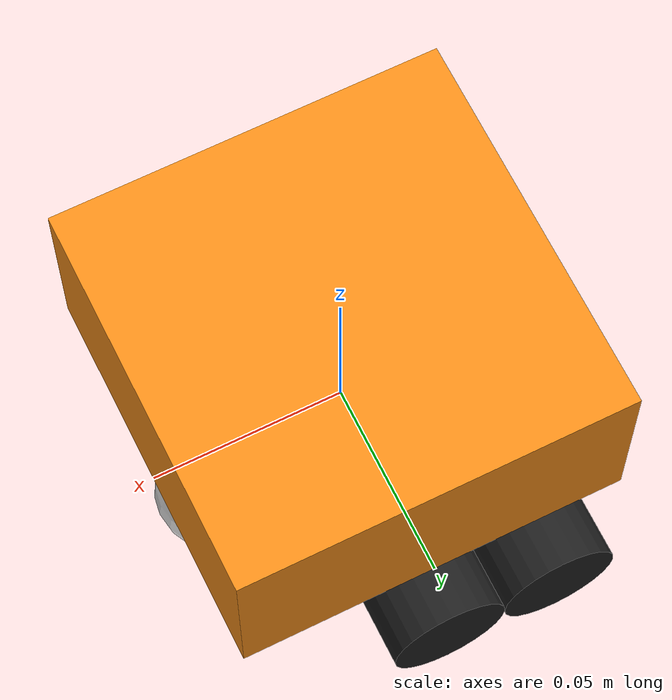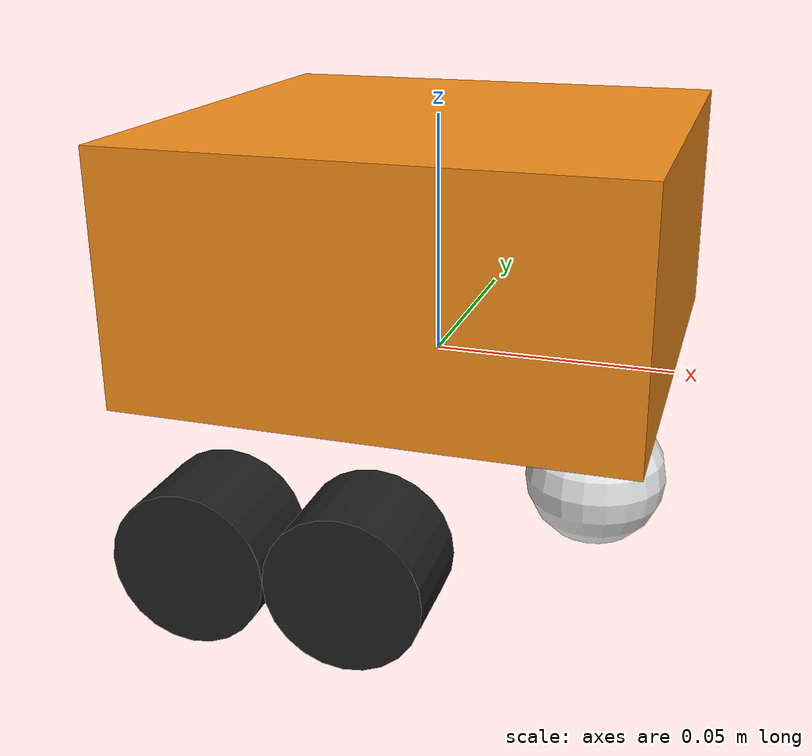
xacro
<?xml version="1.0"?>
<!-- Basic differential drive mobile base -->
<robot xmlns:xacro="http://www.ros.org/wiki/xacro" name="rover">
  <xacro:arg name="prefix" default="" />
  <xacro:arg name="use_mock_hardware" default="false" />

  <xacro:include filename="$(find mars_rover)/description/urdf/rover_description.urdf.xacro" />

  <xacro:include filename="$(find mars_rover)/description/urdf/materials.xacro" />
  <!-- Import rover ros2_control description -->
  <xacro:include filename="$(find mars_rover)/description/ros2_control/rover.ros2_control.xacro" />

  <xacro:rover prefix="$(arg prefix)" />

  <xacro:rover_ros2_control name="Rover" prefix="$(arg prefix)" use_mock_hardware="$(arg use_mock_hardware)"/>

</robot>

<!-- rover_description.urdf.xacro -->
<robot xmlns:xacro="http://www.ros.org/wiki/xacro">

  <xacro:macro name="rover" params="prefix">

  <!-- Constants for robot dimensions -->
  <xacro:property name="PI" value="3.1415926535897931"/>
  <xacro:property name="base_mass" value="0.3" /> <!-- arbitrary value for base mass -->
  <xacro:property name="base_width" value="0.1" />
  <xacro:property name="base_length" value="0.1" />
  <xacro:property name="base_height" value="0.05" />
  <xacro:property name="wheel_mass" value="0.3" /> <!-- arbitrary value for wheel mass -->
  <xacro:property name="wheel_len" value="0.020" />
  <xacro:property name="wheel_radius" value="0.015" />
  <xacro:property name="caster_wheel_mass" value="0.1" /> <!-- arbitrary value for caster wheel mass -->
  <xacro:property name="caster_wheel_radius" value="0.015" />
  <xacro:property name="z_offset" value="-${base_height/2}" /> <!-- Space btw top of beam and the each joint -->

  <!-- Base Link -->
  <link name="${prefix}base_link">
    <collision>
      <origin xyz="0 0 0" rpy="0 0 0"/>
      <geometry>
        <box size="${base_width} ${base_length} ${base_height}"/>
      </geometry>
    </collision>

    <visual>
      <origin xyz="0 0 ${base_height/2}" rpy="0 0 0"/>
      <geometry>
        <box size="${base_width} ${base_length} ${base_height}"/>
      </geometry>
      <material name="orange"/>
    </visual>

    <inertial>
      <origin xyz="0 0 0" rpy="0 0 0"/>
      <mass value="${base_mass}"/>
      <inertia
        ixx="${base_mass / 12.0 * (base_length*base_length + base_height*base_height)}" ixy="0.0" ixz="0.0"
        iyy="${base_mass / 12.0 * (base_height*base_height + base_width*base_width)}" iyz="0.0"
        izz="${base_mass / 12.0 * (base_width*base_width + base_length*base_length)}"/>
      </inertial>
    </link>

    <joint name="${prefix}left_wheel_joint" type="continuous">
      <parent link="${prefix}base_link"/>
      <child link="${prefix}left_wheel"/>
      <origin xyz="0 -${base_width/2} ${z_offset}" rpy="0 0 0"/>
      <axis xyz="0 1 0"/>
      <dynamics damping="0.2"/>
      <limit effort="100" velocity="1.0"/>
    </joint>

    <!-- left wheel Link -->
    <link name="${prefix}left_wheel">
      <collision>
        <origin xyz="0 0 0" rpy="${PI/2} 0 0"/>
        <geometry>
          <cylinder length="${wheel_len}" radius="${wheel_radius}"/>
        </geometry>
      </collision>

      <visual>
        <origin xyz="0 0 0" rpy="${PI/2} 0 0"/>
        <geometry>
          <cylinder length="${wheel_len}" radius="${wheel_radius}"/>
        </geometry>
        <material name="black"/>
      </visual>

      <inertial>
        <origin xyz="0 0 0" rpy="${PI/2} 0 0"/>
        <mass value="${wheel_mass}"/>
        <inertia
          ixx="${wheel_mass / 12.0 * (3*wheel_radius*wheel_radius + wheel_len*wheel_len)}" ixy="0.0" ixz="0.0"
          iyy="${wheel_mass / 12.0 * (3*wheel_radius*wheel_radius + wheel_len*wheel_len)}" iyz="0.0"
          izz="${wheel_mass / 2.0 * wheel_radius*wheel_radius}"/>
        </inertial>
      </link>

    <joint name="${prefix}right_wheel_joint" type="continuous">
      <parent link="${prefix}base_link"/>
      <child link="${prefix}right_wheel"/>
      <origin xyz="0 ${base_width/2} ${z_offset}" rpy="0 0 0"/>
      <axis xyz="0 1 0"/>
      <dynamics damping="0.2"/>
      <limit effort="100" velocity="1.0"/>
    </joint>

    <!-- right wheel Link -->
    <link name="${prefix}right_wheel">
      <collision>
        <origin xyz="0 0 0" rpy="${PI/2} 0 0"/>
        <geometry>
          <cylinder length="${wheel_len}" radius="${wheel_radius}"/>
        </geometry>
      </collision>

      <visual>
        <origin xyz="0 0 0" rpy="${PI/2} 0 0"/>
        <geometry>
          <cylinder length="${wheel_len}" radius="${wheel_radius}"/>
        </geometry>
        <material name="black"/>
      </visual>

      <inertial>
        <origin xyz="0 0 0" rpy="${PI/2} 0 0"/>
        <mass value="${wheel_mass}"/>
        <inertia
          ixx="${wheel_mass / 12.0 * (3*wheel_radius*wheel_radius + wheel_len*wheel_len)}" ixy="0.0" ixz="0.0"
          iyy="${wheel_mass / 12.0 * (3*wheel_radius*wheel_radius + wheel_len*wheel_len)}" iyz="0.0"
          izz="${wheel_mass / 2.0 * wheel_radius*wheel_radius}"/>
        </inertial>
      </link>

    <joint name="${prefix}caster_frontal_wheel_joint" type="fixed">
      <parent link="${prefix}base_link"/>
      <child link="${prefix}caster_frontal_wheel"/>
      <origin xyz="${base_width/2 - caster_wheel_radius} 0 ${z_offset}" rpy="0 0 0"/>
    </joint>

    <!-- caster frontal wheel Link -->
    <link name="${prefix}caster_frontal_wheel">
      <collision>
        <origin xyz="0 0 0" rpy="0 0 0"/>
        <geometry>
          <sphere radius="${caster_wheel_radius}"/>
        </geometry>
      </collision>

      <visual>
        <origin xyz="0 0 0" rpy="0 0 0"/>
        <geometry>
          <sphere radius="${caster_wheel_radius}"/>
        </geometry>
        <material name="white"/>
      </visual>

      <inertial>
        <origin xyz="0 0 0" rpy="0 0 0"/>
        <mass value="${caster_wheel_mass}"/>
        <inertia
          ixx="${caster_wheel_mass * 0.4 * (caster_wheel_radius * caster_wheel_radius)}" ixy="0.0" ixz="0.0"
          iyy="${caster_wheel_mass * 0.4 * (caster_wheel_radius * caster_wheel_radius)}" iyz="0.0"
          izz="${caster_wheel_mass * 0.4 * (caster_wheel_radius * caster_wheel_radius)}"/>
        </inertial>
      </link>

    <joint name="${prefix}rear_left_wheel_joint" type="continuous">
      <parent link="${prefix}base_link"/>
      <child link="${prefix}rear_left_wheel"/>
      <origin xyz="${-base_length/2 + wheel_len} -${base_width/2} ${z_offset}" rpy="0 0 0"/>
      <axis xyz="0 1 0"/>
      <dynamics damping="0.2"/>
      <limit effort="100" velocity="1.0"/>
    </joint>

    <!-- rear left wheel link -->
    <link name="${prefix}rear_left_wheel">
      <collision>
        <origin xyz="0 0 0" rpy="${PI/2} 0 0"/>
        <geometry>
          <cylinder length="${wheel_len}" radius="${wheel_radius}"/>
        </geometry>
      </collision>
      <visual>
        <origin xyz="0 0 0" rpy="${PI/2} 0 0"/>
        <geometry>
          <cylinder length="${wheel_len}" radius="${wheel_radius}"/>
        </geometry>
        <material name="black"/>
      </visual>
      <inertial>
        <origin xyz="0 0 0" rpy="${PI/2} 0 0"/>
        <mass value="${wheel_mass}"/>
        <inertia
          ixx="${wheel_mass / 12.0 * (3*wheel_radius*wheel_radius + wheel_len*wheel_len)}" ixy="0.0" ixz="0.0"
          iyy="${wheel_mass / 12.0 * (3*wheel_radius*wheel_radius + wheel_len*wheel_len)}" iyz="0.0"
          izz="${wheel_mass / 2.0 * wheel_radius*wheel_radius}"/>
      </inertial>
    </link>

    <joint name="${prefix}rear_right_wheel_joint" type="continuous">
      <parent link="${prefix}base_link"/>
      <child link="${prefix}rear_right_wheel"/>
      <origin xyz="${-base_length/2 + wheel_len} ${base_width/2} ${z_offset}" rpy="0 0 0"/>
      <axis xyz="0 1 0"/>
      <dynamics damping="0.2"/>
      <limit effort="100" velocity="1.0"/>
    </joint>

    <!-- rear right wheel link -->
    <link name="${prefix}rear_right_wheel">
      <collision>
        <origin xyz="0 0 0" rpy="${PI/2} 0 0"/>
        <geometry>
          <cylinder length="${wheel_len}" radius="${wheel_radius}"/>
        </geometry>
      </collision>
      <visual>
        <origin xyz="0 0 0" rpy="${PI/2} 0 0"/>
        <geometry>
          <cylinder length="${wheel_len}" radius="${wheel_radius}"/>
        </geometry>
        <material name="black"/>
      </visual>
      <inertial>
        <origin xyz="0 0 0" rpy="${PI/2} 0 0"/>
        <mass value="${wheel_mass}"/>
        <inertia
          ixx="${wheel_mass / 12.0 * (3*wheel_radius*wheel_radius + wheel_len*wheel_len)}" ixy="0.0" ixz="0.0"
          iyy="${wheel_mass / 12.0 * (3*wheel_radius*wheel_radius + wheel_len*wheel_len)}" iyz="0.0"
          izz="${wheel_mass / 2.0 * wheel_radius*wheel_radius}"/>
      </inertial>
    </link>

  </xacro:macro>

</robot>
